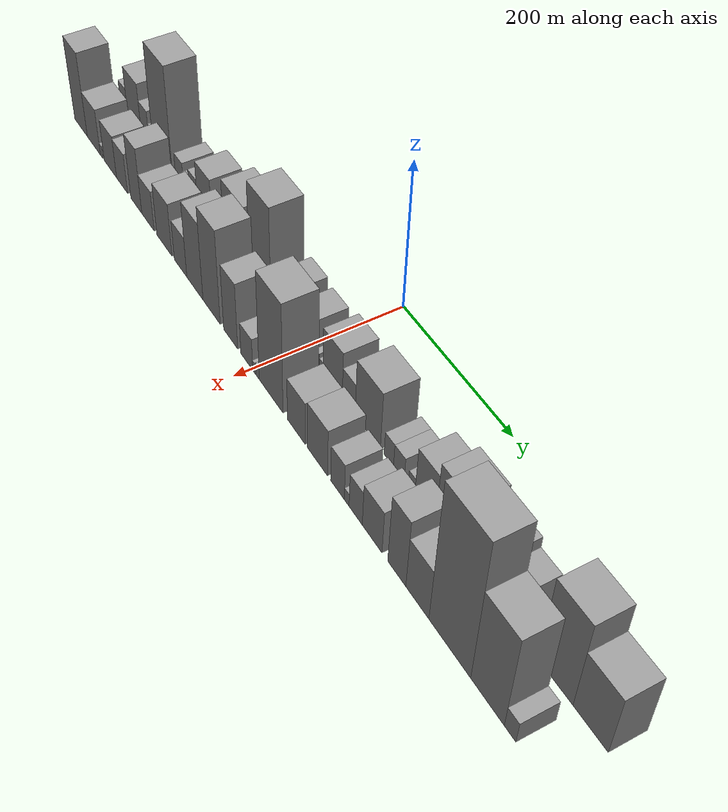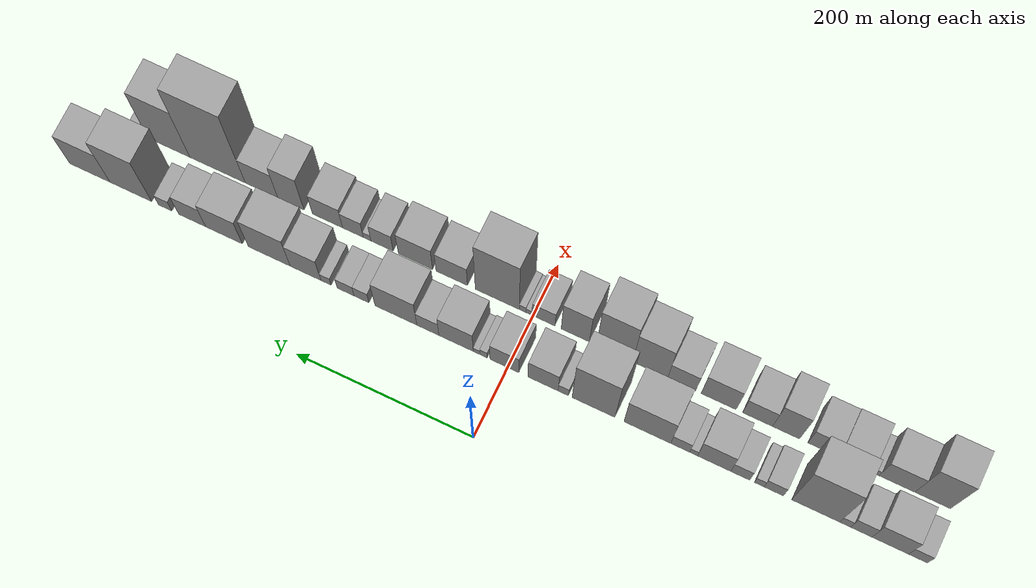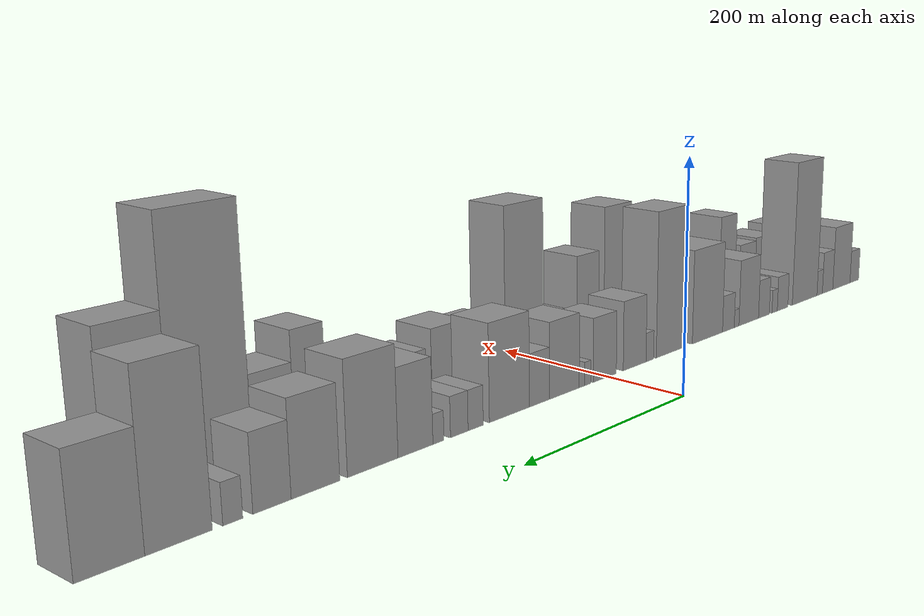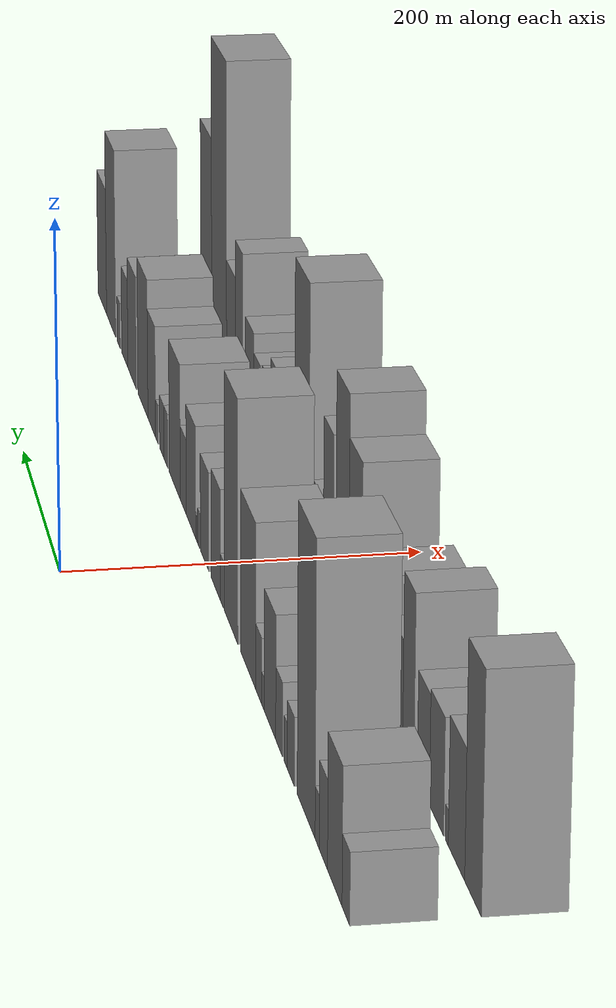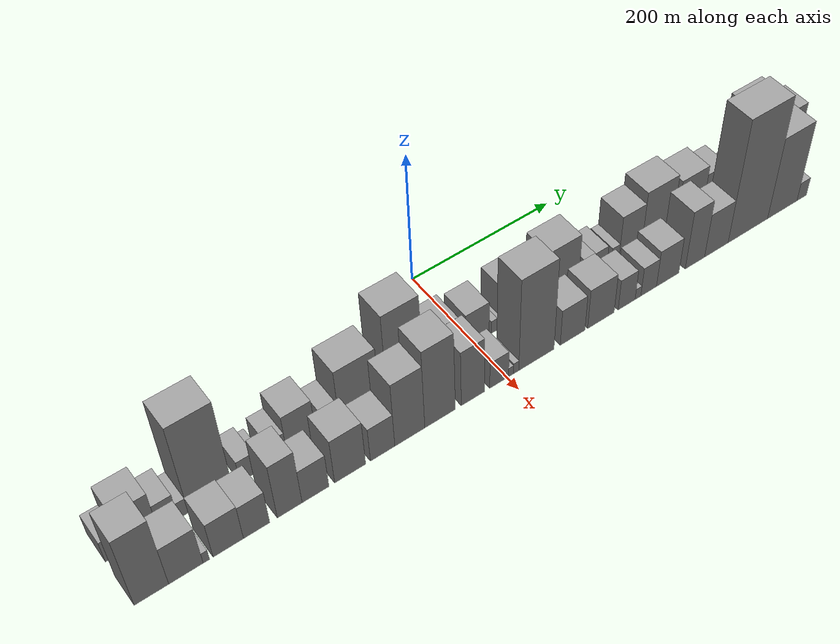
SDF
<sdf version="1.6">
 <world name="default">
  <scene>
   <sky><clouds><speed>12</speed></clouds></sky>
   <ambient>0.4 0.4 0.4 1</ambient>
   <background>0.7 0.7 0.7 1</background>
   <shadows>1</shadows>
  </scene>
  <gravity>0 0 -9.8066</gravity>
  <magnetic_field>6e-06 2.3e-05 -4.2e-05</magnetic_field>
  <physics default="0" name="default_physics" type="ode">
   <ode>
    <solver>
     <type>quick</type>
     <iters>10</iters>
     <sor>1.0</sor>
     <use_dynamic_moi_rescaling>0</use_dynamic_moi_rescaling>
    </solver>
    <constraints>
     <cfm>0</cfm>
     <erp>0.2</erp>
     <contact_max_correcting_vel>100</contact_max_correcting_vel>
     <contact_surface_layer>0.001</contact_surface_layer>
    </constraints>
   </ode>
   <max_step_size>0.004</max_step_size>
   <real_time_factor>1</real_time_factor>
   <real_time_update_rate>250</real_time_update_rate>
  </physics>
  <light name="sun" type="directional">
   <pose>0 0 10 0 0 0</pose>
   <diffuse>0.8 0.8 0.8 1</diffuse>
   <specular>0.2 0.2 0.2 1</specular>
   <attenuation>
    <range>1000</range>
    <constant>0.9</constant>
    <linear>0.01</linear>
    <quadratic>0.001</quadratic>
   </attenuation>
   <direction>-0.5 0.1 -0.9</direction>
  </light>
  <model name="building_1">
   <static>1</static>
   <pose>100.0000 -449.8626 0 0.000000 0.000000 0.000000</pose>
   <link name="link">
    <pose>0 0 18.00 0 0 0</pose>
    <collision name="collision"><geometry><box><size>40.0000 20.2748 36.0000</size></box></geometry></collision>
    <visual name="visual">
     <cast_shadows>0</cast_shadows>
     <geometry><box><size>40.0000 20.2748 36.0000</size></box></geometry>
     <material>
      <script>
       <uri>model://grey_wall/materials/scripts</uri>
       <uri>model://grey_wall/materials/textures</uri>
       <name>vrc/grey_wall</name>
      </script>
     </material>
    </visual>
   </link>
  </model>
  <model name="building_2">
   <static>1</static>
   <pose>100.0000 -420.0380 0 0.000000 0.000000 0.000000</pose>
   <link name="link">
    <pose>0 0 34.50 0 0 0</pose>
    <collision name="collision"><geometry><box><size>40.0000 39.3744 69.0000</size></box></geometry></collision>
    <visual name="visual">
     <cast_shadows>0</cast_shadows>
     <geometry><box><size>40.0000 39.3744 69.0000</size></box></geometry>
     <material>
      <script>
       <uri>model://grey_wall/materials/scripts</uri>
       <uri>model://grey_wall/materials/textures</uri>
       <name>vrc/grey_wall</name>
      </script>
     </material>
    </visual>
   </link>
  </model>
  <model name="building_3">
   <static>1</static>
   <pose>100.0000 -388.8218 0 0.000000 0.000000 0.000000</pose>
   <link name="link">
    <pose>0 0 22.50 0 0 0</pose>
    <collision name="collision"><geometry><box><size>40.0000 23.0582 45.0000</size></box></geometry></collision>
    <visual name="visual">
     <cast_shadows>0</cast_shadows>
     <geometry><box><size>40.0000 23.0582 45.0000</size></box></geometry>
     <material>
      <script>
       <uri>model://grey_wall/materials/scripts</uri>
       <uri>model://grey_wall/materials/textures</uri>
       <name>vrc/grey_wall</name>
      </script>
     </material>
    </visual>
   </link>
  </model>
  <model name="building_4">
   <static>1</static>
   <pose>100.0000 -371.4360 0 0.000000 0.000000 0.000000</pose>
   <link name="link">
    <pose>0 0 13.50 0 0 0</pose>
    <collision name="collision"><geometry><box><size>40.0000 11.7134 27.0000</size></box></geometry></collision>
    <visual name="visual">
     <cast_shadows>0</cast_shadows>
     <geometry><box><size>40.0000 11.7134 27.0000</size></box></geometry>
     <material>
      <script>
       <uri>model://grey_wall/materials/scripts</uri>
       <uri>model://grey_wall/materials/textures</uri>
       <name>vrc/grey_wall</name>
      </script>
     </material>
    </visual>
   </link>
  </model>
  <model name="building_5">
   <static>1</static>
   <pose>100.0000 -339.5729 0 0.000000 0.000000 0.000000</pose>
   <link name="link">
    <pose>0 0 75.00 0 0 0</pose>
    <collision name="collision"><geometry><box><size>40.0000 52.0127 150.0000</size></box></geometry></collision>
    <visual name="visual">
     <cast_shadows>0</cast_shadows>
     <geometry><box><size>40.0000 52.0127 150.0000</size></box></geometry>
     <material>
      <script>
       <uri>model://grey_wall/materials/scripts</uri>
       <uri>model://grey_wall/materials/textures</uri>
       <name>vrc/grey_wall</name>
      </script>
     </material>
    </visual>
   </link>
  </model>
  <model name="building_6">
   <static>1</static>
   <pose>100.0000 -293.9853 0 0.000000 0.000000 0.000000</pose>
   <link name="link">
    <pose>0 0 18.00 0 0 0</pose>
    <collision name="collision"><geometry><box><size>40.0000 21.1625 36.0000</size></box></geometry></collision>
    <visual name="visual">
     <cast_shadows>0</cast_shadows>
     <geometry><box><size>40.0000 21.1625 36.0000</size></box></geometry>
     <material>
      <script>
       <uri>model://grey_wall/materials/scripts</uri>
       <uri>model://grey_wall/materials/textures</uri>
       <name>vrc/grey_wall</name>
      </script>
     </material>
    </visual>
   </link>
  </model>
  <model name="building_7">
   <static>1</static>
   <pose>100.0000 -278.1422 0 0.000000 0.000000 0.000000</pose>
   <link name="link">
    <pose>0 0 12.00 0 0 0</pose>
    <collision name="collision"><geometry><box><size>40.0000 10.5238 24.0000</size></box></geometry></collision>
    <visual name="visual">
     <cast_shadows>0</cast_shadows>
     <geometry><box><size>40.0000 10.5238 24.0000</size></box></geometry>
     <material>
      <script>
       <uri>model://grey_wall/materials/scripts</uri>
       <uri>model://grey_wall/materials/textures</uri>
       <name>vrc/grey_wall</name>
      </script>
     </material>
    </visual>
   </link>
  </model>
  <model name="building_8">
   <static>1</static>
   <pose>100.0000 -257.4238 0 0.000000 0.000000 0.000000</pose>
   <link name="link">
    <pose>0 0 19.50 0 0 0</pose>
    <collision name="collision"><geometry><box><size>40.0000 20.9129 39.0000</size></box></geometry></collision>
    <visual name="visual">
     <cast_shadows>0</cast_shadows>
     <geometry><box><size>40.0000 20.9129 39.0000</size></box></geometry>
     <material>
      <script>
       <uri>model://grey_wall/materials/scripts</uri>
       <uri>model://grey_wall/materials/textures</uri>
       <name>vrc/grey_wall</name>
      </script>
     </material>
    </visual>
   </link>
  </model>
  <model name="building_9">
   <static>1</static>
   <pose>100.0000 -228.7680 0 0.000000 0.000000 0.000000</pose>
   <link name="link">
    <pose>0 0 33.00 0 0 0</pose>
    <collision name="collision"><geometry><box><size>40.0000 36.3987 66.0000</size></box></geometry></collision>
    <visual name="visual">
     <cast_shadows>0</cast_shadows>
     <geometry><box><size>40.0000 36.3987 66.0000</size></box></geometry>
     <material>
      <script>
       <uri>model://grey_wall/materials/scripts</uri>
       <uri>model://grey_wall/materials/textures</uri>
       <name>vrc/grey_wall</name>
      </script>
     </material>
    </visual>
   </link>
  </model>
  <model name="building_10">
   <static>1</static>
   <pose>100.0000 -206.2776 0 0.000000 0.000000 0.000000</pose>
   <link name="link">
    <pose>0 0 9.00 0 0 0</pose>
    <collision name="collision"><geometry><box><size>40.0000 8.5822 18.0000</size></box></geometry></collision>
    <visual name="visual">
     <cast_shadows>0</cast_shadows>
     <geometry><box><size>40.0000 8.5822 18.0000</size></box></geometry>
     <material>
      <script>
       <uri>model://grey_wall/materials/scripts</uri>
       <uri>model://grey_wall/materials/textures</uri>
       <name>vrc/grey_wall</name>
      </script>
     </material>
    </visual>
   </link>
  </model>
  <model name="building_11">
   <static>1</static>
   <pose>100.0000 -191.5250 0 0.000000 0.000000 0.000000</pose>
   <link name="link">
    <pose>0 0 18.00 0 0 0</pose>
    <collision name="collision"><geometry><box><size>40.0000 20.9230 36.0000</size></box></geometry></collision>
    <visual name="visual">
     <cast_shadows>0</cast_shadows>
     <geometry><box><size>40.0000 20.9230 36.0000</size></box></geometry>
     <material>
      <script>
       <uri>model://grey_wall/materials/scripts</uri>
       <uri>model://grey_wall/materials/textures</uri>
       <name>vrc/grey_wall</name>
      </script>
     </material>
    </visual>
   </link>
  </model>
  <model name="building_12">
   <static>1</static>
   <pose>100.0000 -155.1865 0 0.000000 0.000000 0.000000</pose>
   <link name="link">
    <pose>0 0 45.00 0 0 0</pose>
    <collision name="collision"><geometry><box><size>40.0000 51.7539 90.0000</size></box></geometry></collision>
    <visual name="visual">
     <cast_shadows>0</cast_shadows>
     <geometry><box><size>40.0000 51.7539 90.0000</size></box></geometry>
     <material>
      <script>
       <uri>model://grey_wall/materials/scripts</uri>
       <uri>model://grey_wall/materials/textures</uri>
       <name>vrc/grey_wall</name>
      </script>
     </material>
    </visual>
   </link>
  </model>
  <model name="building_13">
   <static>1</static>
   <pose>100.0000 -95.4096 0 0.000000 0.000000 0.000000</pose>
   <link name="link">
    <pose>0 0 67.50 0 0 0</pose>
    <collision name="collision"><geometry><box><size>40.0000 47.8001 135.0000</size></box></geometry></collision>
    <visual name="visual">
     <cast_shadows>0</cast_shadows>
     <geometry><box><size>40.0000 47.8001 135.0000</size></box></geometry>
     <material>
      <script>
       <uri>model://grey_wall/materials/scripts</uri>
       <uri>model://grey_wall/materials/textures</uri>
       <name>vrc/grey_wall</name>
      </script>
     </material>
    </visual>
   </link>
  </model>
  <model name="building_14">
   <static>1</static>
   <pose>100.0000 -61.6691 0 0.000000 0.000000 0.000000</pose>
   <link name="link">
    <pose>0 0 13.50 0 0 0</pose>
    <collision name="collision"><geometry><box><size>40.0000 11.6809 27.0000</size></box></geometry></collision>
    <visual name="visual">
     <cast_shadows>0</cast_shadows>
     <geometry><box><size>40.0000 11.6809 27.0000</size></box></geometry>
     <material>
      <script>
       <uri>model://grey_wall/materials/scripts</uri>
       <uri>model://grey_wall/materials/textures</uri>
       <name>vrc/grey_wall</name>
      </script>
     </material>
    </visual>
   </link>
  </model>
  <model name="building_15">
   <static>1</static>
   <pose>100.0000 -38.9143 0 0.000000 0.000000 0.000000</pose>
   <link name="link">
    <pose>0 0 31.50 0 0 0</pose>
    <collision name="collision"><geometry><box><size>40.0000 33.8286 63.0000</size></box></geometry></collision>
    <visual name="visual">
     <cast_shadows>0</cast_shadows>
     <geometry><box><size>40.0000 33.8286 63.0000</size></box></geometry>
     <material>
      <script>
       <uri>model://grey_wall/materials/scripts</uri>
       <uri>model://grey_wall/materials/textures</uri>
       <name>vrc/grey_wall</name>
      </script>
     </material>
    </visual>
   </link>
  </model>
  <model name="building_16">
   <static>1</static>
   <pose>100.0000 4.2583 0 0.000000 0.000000 0.000000</pose>
   <link name="link">
    <pose>0 0 28.50 0 0 0</pose>
    <collision name="collision"><geometry><box><size>40.0000 32.5166 57.0000</size></box></geometry></collision>
    <visual name="visual">
     <cast_shadows>0</cast_shadows>
     <geometry><box><size>40.0000 32.5166 57.0000</size></box></geometry>
     <material>
      <script>
       <uri>model://grey_wall/materials/scripts</uri>
       <uri>model://grey_wall/materials/textures</uri>
       <name>vrc/grey_wall</name>
      </script>
     </material>
    </visual>
   </link>
  </model>
  <model name="building_17">
   <static>1</static>
   <pose>100.0000 27.7395 0 0.000000 0.000000 0.000000</pose>
   <link name="link">
    <pose>0 0 10.50 0 0 0</pose>
    <collision name="collision"><geometry><box><size>40.0000 8.4458 21.0000</size></box></geometry></collision>
    <visual name="visual">
     <cast_shadows>0</cast_shadows>
     <geometry><box><size>40.0000 8.4458 21.0000</size></box></geometry>
     <material>
      <script>
       <uri>model://grey_wall/materials/scripts</uri>
       <uri>model://grey_wall/materials/textures</uri>
       <name>vrc/grey_wall</name>
      </script>
     </material>
    </visual>
   </link>
  </model>
  <model name="building_18">
   <static>1</static>
   <pose>100.0000 35.7000 0 0.000000 0.000000 0.000000</pose>
   <link name="link">
    <pose>0 0 7.50 0 0 0</pose>
    <collision name="collision"><geometry><box><size>40.0000 7.4752 15.0000</size></box></geometry></collision>
    <visual name="visual">
     <cast_shadows>0</cast_shadows>
     <geometry><box><size>40.0000 7.4752 15.0000</size></box></geometry>
     <material>
      <script>
       <uri>model://grey_wall/materials/scripts</uri>
       <uri>model://grey_wall/materials/textures</uri>
       <name>vrc/grey_wall</name>
      </script>
     </material>
    </visual>
   </link>
  </model>
  <model name="building_19">
   <static>1</static>
   <pose>100.0000 58.8195 0 0.000000 0.000000 0.000000</pose>
   <link name="link">
    <pose>0 0 33.00 0 0 0</pose>
    <collision name="collision"><geometry><box><size>40.0000 38.7638 66.0000</size></box></geometry></collision>
    <visual name="visual">
     <cast_shadows>0</cast_shadows>
     <geometry><box><size>40.0000 38.7638 66.0000</size></box></geometry>
     <material>
      <script>
       <uri>model://grey_wall/materials/scripts</uri>
       <uri>model://grey_wall/materials/textures</uri>
       <name>vrc/grey_wall</name>
      </script>
     </material>
    </visual>
   </link>
  </model>
  <model name="building_20">
   <static>1</static>
   <pose>100.0000 90.7243 0 0.000000 0.000000 0.000000</pose>
   <link name="link">
    <pose>0 0 22.50 0 0 0</pose>
    <collision name="collision"><geometry><box><size>40.0000 25.0458 45.0000</size></box></geometry></collision>
    <visual name="visual">
     <cast_shadows>0</cast_shadows>
     <geometry><box><size>40.0000 25.0458 45.0000</size></box></geometry>
     <material>
      <script>
       <uri>model://grey_wall/materials/scripts</uri>
       <uri>model://grey_wall/materials/textures</uri>
       <name>vrc/grey_wall</name>
      </script>
     </material>
    </visual>
   </link>
  </model>
  <model name="building_21">
   <static>1</static>
   <pose>100.0000 127.0861 0 0.000000 0.000000 0.000000</pose>
   <link name="link">
    <pose>0 0 40.50 0 0 0</pose>
    <collision name="collision"><geometry><box><size>40.0000 47.6779 81.0000</size></box></geometry></collision>
    <visual name="visual">
     <cast_shadows>0</cast_shadows>
     <geometry><box><size>40.0000 47.6779 81.0000</size></box></geometry>
     <material>
      <script>
       <uri>model://grey_wall/materials/scripts</uri>
       <uri>model://grey_wall/materials/textures</uri>
       <name>vrc/grey_wall</name>
      </script>
     </material>
    </visual>
   </link>
  </model>
  <model name="building_22">
   <static>1</static>
   <pose>100.0000 166.4520 0 0.000000 0.000000 0.000000</pose>
   <link name="link">
    <pose>0 0 16.50 0 0 0</pose>
    <collision name="collision"><geometry><box><size>40.0000 17.0539 33.0000</size></box></geometry></collision>
    <visual name="visual">
     <cast_shadows>0</cast_shadows>
     <geometry><box><size>40.0000 17.0539 33.0000</size></box></geometry>
     <material>
      <script>
       <uri>model://grey_wall/materials/scripts</uri>
       <uri>model://grey_wall/materials/textures</uri>
       <name>vrc/grey_wall</name>
      </script>
     </material>
    </visual>
   </link>
  </model>
  <model name="building_23">
   <static>1</static>
   <pose>100.0000 184.6069 0 0.000000 0.000000 0.000000</pose>
   <link name="link">
    <pose>0 0 16.50 0 0 0</pose>
    <collision name="collision"><geometry><box><size>40.0000 19.2559 33.0000</size></box></geometry></collision>
    <visual name="visual">
     <cast_shadows>0</cast_shadows>
     <geometry><box><size>40.0000 19.2559 33.0000</size></box></geometry>
     <material>
      <script>
       <uri>model://grey_wall/materials/scripts</uri>
       <uri>model://grey_wall/materials/textures</uri>
       <name>vrc/grey_wall</name>
      </script>
     </material>
    </visual>
   </link>
  </model>
  <model name="building_24">
   <static>1</static>
   <pose>100.0000 207.0537 0 0.000000 0.000000 0.000000</pose>
   <link name="link">
    <pose>0 0 12.00 0 0 0</pose>
    <collision name="collision"><geometry><box><size>40.0000 11.6377 24.0000</size></box></geometry></collision>
    <visual name="visual">
     <cast_shadows>0</cast_shadows>
     <geometry><box><size>40.0000 11.6377 24.0000</size></box></geometry>
     <material>
      <script>
       <uri>model://grey_wall/materials/scripts</uri>
       <uri>model://grey_wall/materials/textures</uri>
       <name>vrc/grey_wall</name>
      </script>
     </material>
    </visual>
   </link>
  </model>
  <model name="building_25">
   <static>1</static>
   <pose>100.0000 230.6576 0 0.000000 0.000000 0.000000</pose>
   <link name="link">
    <pose>0 0 34.50 0 0 0</pose>
    <collision name="collision"><geometry><box><size>40.0000 35.5702 69.0000</size></box></geometry></collision>
    <visual name="visual">
     <cast_shadows>0</cast_shadows>
     <geometry><box><size>40.0000 35.5702 69.0000</size></box></geometry>
     <material>
      <script>
       <uri>model://grey_wall/materials/scripts</uri>
       <uri>model://grey_wall/materials/textures</uri>
       <name>vrc/grey_wall</name>
      </script>
     </material>
    </visual>
   </link>
  </model>
  <model name="building_26">
   <static>1</static>
   <pose>100.0000 272.6482 0 0.000000 0.000000 0.000000</pose>
   <link name="link">
    <pose>0 0 43.50 0 0 0</pose>
    <collision name="collision"><geometry><box><size>40.0000 48.4110 87.0000</size></box></geometry></collision>
    <visual name="visual">
     <cast_shadows>0</cast_shadows>
     <geometry><box><size>40.0000 48.4110 87.0000</size></box></geometry>
     <material>
      <script>
       <uri>model://grey_wall/materials/scripts</uri>
       <uri>model://grey_wall/materials/textures</uri>
       <name>vrc/grey_wall</name>
      </script>
     </material>
    </visual>
   </link>
  </model>
  <model name="building_27">
   <static>1</static>
   <pose>100.0000 325.1792 0 0.000000 0.000000 0.000000</pose>
   <link name="link">
    <pose>0 0 36.00 0 0 0</pose>
    <collision name="collision"><geometry><box><size>40.0000 42.6510 72.0000</size></box></geometry></collision>
    <visual name="visual">
     <cast_shadows>0</cast_shadows>
     <geometry><box><size>40.0000 42.6510 72.0000</size></box></geometry>
     <material>
      <script>
       <uri>model://grey_wall/materials/scripts</uri>
       <uri>model://grey_wall/materials/textures</uri>
       <name>vrc/grey_wall</name>
      </script>
     </material>
    </visual>
   </link>
  </model>
  <model name="building_28">
   <static>1</static>
   <pose>100.0000 362.3307 0 0.000000 0.000000 0.000000</pose>
   <link name="link">
    <pose>0 0 28.50 0 0 0</pose>
    <collision name="collision"><geometry><box><size>40.0000 31.6519 57.0000</size></box></geometry></collision>
    <visual name="visual">
     <cast_shadows>0</cast_shadows>
     <geometry><box><size>40.0000 31.6519 57.0000</size></box></geometry>
     <material>
      <script>
       <uri>model://grey_wall/materials/scripts</uri>
       <uri>model://grey_wall/materials/textures</uri>
       <name>vrc/grey_wall</name>
      </script>
     </material>
    </visual>
   </link>
  </model>
  <model name="building_29">
   <static>1</static>
   <pose>100.0000 393.9861 0 0.000000 0.000000 0.000000</pose>
   <link name="link">
    <pose>0 0 15.00 0 0 0</pose>
    <collision name="collision"><geometry><box><size>40.0000 15.6589 30.0000</size></box></geometry></collision>
    <visual name="visual">
     <cast_shadows>0</cast_shadows>
     <geometry><box><size>40.0000 15.6589 30.0000</size></box></geometry>
     <material>
      <script>
       <uri>model://grey_wall/materials/scripts</uri>
       <uri>model://grey_wall/materials/textures</uri>
       <name>vrc/grey_wall</name>
      </script>
     </material>
    </visual>
   </link>
  </model>
  <model name="building_30">
   <static>1</static>
   <pose>100.0000 434.3695 0 0.000000 0.000000 0.000000</pose>
   <link name="link">
    <pose>0 0 61.50 0 0 0</pose>
    <collision name="collision"><geometry><box><size>40.0000 49.1080 123.0000</size></box></geometry></collision>
    <visual name="visual">
     <cast_shadows>0</cast_shadows>
     <geometry><box><size>40.0000 49.1080 123.0000</size></box></geometry>
     <material>
      <script>
       <uri>model://grey_wall/materials/scripts</uri>
       <uri>model://grey_wall/materials/textures</uri>
       <name>vrc/grey_wall</name>
      </script>
     </material>
    </visual>
   </link>
  </model>
  <model name="building_31">
   <static>1</static>
   <pose>100.0000 482.7435 0 0.000000 0.000000 0.000000</pose>
   <link name="link">
    <pose>0 0 42.00 0 0 0</pose>
    <collision name="collision"><geometry><box><size>40.0000 47.6400 84.0000</size></box></geometry></collision>
    <visual name="visual">
     <cast_shadows>0</cast_shadows>
     <geometry><box><size>40.0000 47.6400 84.0000</size></box></geometry>
     <material>
      <script>
       <uri>model://grey_wall/materials/scripts</uri>
       <uri>model://grey_wall/materials/textures</uri>
       <name>vrc/grey_wall</name>
      </script>
     </material>
    </visual>
   </link>
  </model>
  <model name="building_32">
   <static>1</static>
   <pose>160.0000 -440.8361 0 0.000000 0.000000 0.000000</pose>
   <link name="link">
    <pose>0 0 60.00 0 0 0</pose>
    <collision name="collision"><geometry><box><size>40.0000 38.3278 120.0000</size></box></geometry></collision>
    <visual name="visual">
     <cast_shadows>0</cast_shadows>
     <geometry><box><size>40.0000 38.3278 120.0000</size></box></geometry>
     <material>
      <script>
       <uri>model://grey_wall/materials/scripts</uri>
       <uri>model://grey_wall/materials/textures</uri>
       <name>vrc/grey_wall</name>
      </script>
     </material>
    </visual>
   </link>
  </model>
  <model name="building_33">
   <static>1</static>
   <pose>160.0000 -402.2378 0 0.000000 0.000000 0.000000</pose>
   <link name="link">
    <pose>0 0 33.00 0 0 0</pose>
    <collision name="collision"><geometry><box><size>40.0000 38.8689 66.0000</size></box></geometry></collision>
    <visual name="visual">
     <cast_shadows>0</cast_shadows>
     <geometry><box><size>40.0000 38.8689 66.0000</size></box></geometry>
     <material>
      <script>
       <uri>model://grey_wall/materials/scripts</uri>
       <uri>model://grey_wall/materials/textures</uri>
       <name>vrc/grey_wall</name>
      </script>
     </material>
    </visual>
   </link>
  </model>
  <model name="building_34">
   <static>1</static>
   <pose>160.0000 -379.1313 0 0.000000 0.000000 0.000000</pose>
   <link name="link">
    <pose>0 0 9.00 0 0 0</pose>
    <collision name="collision"><geometry><box><size>40.0000 7.3441 18.0000</size></box></geometry></collision>
    <visual name="visual">
     <cast_shadows>0</cast_shadows>
     <geometry><box><size>40.0000 7.3441 18.0000</size></box></geometry>
     <material>
      <script>
       <uri>model://grey_wall/materials/scripts</uri>
       <uri>model://grey_wall/materials/textures</uri>
       <name>vrc/grey_wall</name>
      </script>
     </material>
    </visual>
   </link>
  </model>
  <model name="building_35">
   <static>1</static>
   <pose>160.0000 -353.8364 0 0.000000 0.000000 0.000000</pose>
   <link name="link">
    <pose>0 0 30.00 0 0 0</pose>
    <collision name="collision"><geometry><box><size>40.0000 35.2457 60.0000</size></box></geometry></collision>
    <visual name="visual">
     <cast_shadows>0</cast_shadows>
     <geometry><box><size>40.0000 35.2457 60.0000</size></box></geometry>
     <material>
      <script>
       <uri>model://grey_wall/materials/scripts</uri>
       <uri>model://grey_wall/materials/textures</uri>
       <name>vrc/grey_wall</name>
      </script>
     </material>
    </visual>
   </link>
  </model>
  <model name="building_36">
   <static>1</static>
   <pose>160.0000 -320.7189 0 0.000000 0.000000 0.000000</pose>
   <link name="link">
    <pose>0 0 28.50 0 0 0</pose>
    <collision name="collision"><geometry><box><size>40.0000 30.9892 57.0000</size></box></geometry></collision>
    <visual name="visual">
     <cast_shadows>0</cast_shadows>
     <geometry><box><size>40.0000 30.9892 57.0000</size></box></geometry>
     <material>
      <script>
       <uri>model://grey_wall/materials/scripts</uri>
       <uri>model://grey_wall/materials/textures</uri>
       <name>vrc/grey_wall</name>
      </script>
     </material>
    </visual>
   </link>
  </model>
  <model name="building_37">
   <static>1</static>
   <pose>160.0000 -281.3002 0 0.000000 0.000000 0.000000</pose>
   <link name="link">
    <pose>0 0 46.50 0 0 0</pose>
    <collision name="collision"><geometry><box><size>40.0000 29.8483 93.0000</size></box></geometry></collision>
    <visual name="visual">
     <cast_shadows>0</cast_shadows>
     <geometry><box><size>40.0000 29.8483 93.0000</size></box></geometry>
     <material>
      <script>
       <uri>model://grey_wall/materials/scripts</uri>
       <uri>model://grey_wall/materials/textures</uri>
       <name>vrc/grey_wall</name>
      </script>
     </material>
    </visual>
   </link>
  </model>
  <model name="building_38">
   <static>1</static>
   <pose>160.0000 -249.9176 0 0.000000 0.000000 0.000000</pose>
   <link name="link">
    <pose>0 0 28.50 0 0 0</pose>
    <collision name="collision"><geometry><box><size>40.0000 32.9169 57.0000</size></box></geometry></collision>
    <visual name="visual">
     <cast_shadows>0</cast_shadows>
     <geometry><box><size>40.0000 32.9169 57.0000</size></box></geometry>
     <material>
      <script>
       <uri>model://grey_wall/materials/scripts</uri>
       <uri>model://grey_wall/materials/textures</uri>
       <name>vrc/grey_wall</name>
      </script>
     </material>
    </visual>
   </link>
  </model>
  <model name="building_39">
   <static>1</static>
   <pose>160.0000 -207.0319 0 0.000000 0.000000 0.000000</pose>
   <link name="link">
    <pose>0 0 37.50 0 0 0</pose>
    <collision name="collision"><geometry><box><size>40.0000 38.8544 75.0000</size></box></geometry></collision>
    <visual name="visual">
     <cast_shadows>0</cast_shadows>
     <geometry><box><size>40.0000 38.8544 75.0000</size></box></geometry>
     <material>
      <script>
       <uri>model://grey_wall/materials/scripts</uri>
       <uri>model://grey_wall/materials/textures</uri>
       <name>vrc/grey_wall</name>
      </script>
     </material>
    </visual>
   </link>
  </model>
  <model name="building_40">
   <static>1</static>
   <pose>160.0000 -166.0215 0 0.000000 0.000000 0.000000</pose>
   <link name="link">
    <pose>0 0 28.50 0 0 0</pose>
    <collision name="collision"><geometry><box><size>40.0000 31.1665 57.0000</size></box></geometry></collision>
    <visual name="visual">
     <cast_shadows>0</cast_shadows>
     <geometry><box><size>40.0000 31.1665 57.0000</size></box></geometry>
     <material>
      <script>
       <uri>model://grey_wall/materials/scripts</uri>
       <uri>model://grey_wall/materials/textures</uri>
       <name>vrc/grey_wall</name>
      </script>
     </material>
    </visual>
   </link>
  </model>
  <model name="building_41">
   <static>1</static>
   <pose>160.0000 -130.9141 0 0.000000 0.000000 0.000000</pose>
   <link name="link">
    <pose>0 0 54.00 0 0 0</pose>
    <collision name="collision"><geometry><box><size>40.0000 39.0482 108.0000</size></box></geometry></collision>
    <visual name="visual">
     <cast_shadows>0</cast_shadows>
     <geometry><box><size>40.0000 39.0482 108.0000</size></box></geometry>
     <material>
      <script>
       <uri>model://grey_wall/materials/scripts</uri>
       <uri>model://grey_wall/materials/textures</uri>
       <name>vrc/grey_wall</name>
      </script>
     </material>
    </visual>
   </link>
  </model>
  <model name="building_42">
   <static>1</static>
   <pose>160.0000 -91.1253 0 0.000000 0.000000 0.000000</pose>
   <link name="link">
    <pose>0 0 66.00 0 0 0</pose>
    <collision name="collision"><geometry><box><size>40.0000 40.5294 132.0000</size></box></geometry></collision>
    <visual name="visual">
     <cast_shadows>0</cast_shadows>
     <geometry><box><size>40.0000 40.5294 132.0000</size></box></geometry>
     <material>
      <script>
       <uri>model://grey_wall/materials/scripts</uri>
       <uri>model://grey_wall/materials/textures</uri>
       <name>vrc/grey_wall</name>
      </script>
     </material>
    </visual>
   </link>
  </model>
  <model name="building_43">
   <static>1</static>
   <pose>160.0000 -47.0292 0 0.000000 0.000000 0.000000</pose>
   <link name="link">
    <pose>0 0 46.50 0 0 0</pose>
    <collision name="collision"><geometry><box><size>40.0000 31.6630 93.0000</size></box></geometry></collision>
    <visual name="visual">
     <cast_shadows>0</cast_shadows>
     <geometry><box><size>40.0000 31.6630 93.0000</size></box></geometry>
     <material>
      <script>
       <uri>model://grey_wall/materials/scripts</uri>
       <uri>model://grey_wall/materials/textures</uri>
       <name>vrc/grey_wall</name>
      </script>
     </material>
    </visual>
   </link>
  </model>
  <model name="building_44">
   <static>1</static>
   <pose>160.0000 -11.1660 0 0.000000 0.000000 0.000000</pose>
   <link name="link">
    <pose>0 0 22.50 0 0 0</pose>
    <collision name="collision"><geometry><box><size>40.0000 26.0634 45.0000</size></box></geometry></collision>
    <visual name="visual">
     <cast_shadows>0</cast_shadows>
     <geometry><box><size>40.0000 26.0634 45.0000</size></box></geometry>
     <material>
      <script>
       <uri>model://grey_wall/materials/scripts</uri>
       <uri>model://grey_wall/materials/textures</uri>
       <name>vrc/grey_wall</name>
      </script>
     </material>
    </visual>
   </link>
  </model>
  <model name="building_45">
   <static>1</static>
   <pose>160.0000 5.2234 0 0.000000 0.000000 0.000000</pose>
   <link name="link">
    <pose>0 0 7.50 0 0 0</pose>
    <collision name="collision"><geometry><box><size>40.0000 6.7153 15.0000</size></box></geometry></collision>
    <visual name="visual">
     <cast_shadows>0</cast_shadows>
     <geometry><box><size>40.0000 6.7153 15.0000</size></box></geometry>
     <material>
      <script>
       <uri>model://grey_wall/materials/scripts</uri>
       <uri>model://grey_wall/materials/textures</uri>
       <name>vrc/grey_wall</name>
      </script>
     </material>
    </visual>
   </link>
  </model>
  <model name="building_46">
   <static>1</static>
   <pose>160.0000 12.3222 0 0.000000 0.000000 0.000000</pose>
   <link name="link">
    <pose>0 0 9.00 0 0 0</pose>
    <collision name="collision"><geometry><box><size>40.0000 7.4822 18.0000</size></box></geometry></collision>
    <visual name="visual">
     <cast_shadows>0</cast_shadows>
     <geometry><box><size>40.0000 7.4822 18.0000</size></box></geometry>
     <material>
      <script>
       <uri>model://grey_wall/materials/scripts</uri>
       <uri>model://grey_wall/materials/textures</uri>
       <name>vrc/grey_wall</name>
      </script>
     </material>
    </visual>
   </link>
  </model>
  <model name="building_47">
   <static>1</static>
   <pose>160.0000 41.0272 0 0.000000 0.000000 0.000000</pose>
   <link name="link">
    <pose>0 0 76.50 0 0 0</pose>
    <collision name="collision"><geometry><box><size>40.0000 49.9279 153.0000</size></box></geometry></collision>
    <visual name="visual">
     <cast_shadows>0</cast_shadows>
     <geometry><box><size>40.0000 49.9279 153.0000</size></box></geometry>
     <material>
      <script>
       <uri>model://grey_wall/materials/scripts</uri>
       <uri>model://grey_wall/materials/textures</uri>
       <name>vrc/grey_wall</name>
      </script>
     </material>
    </visual>
   </link>
  </model>
  <model name="building_48">
   <static>1</static>
   <pose>160.0000 92.8804 0 0.000000 0.000000 0.000000</pose>
   <link name="link">
    <pose>0 0 30.00 0 0 0</pose>
    <collision name="collision"><geometry><box><size>40.0000 35.7784 60.0000</size></box></geometry></collision>
    <visual name="visual">
     <cast_shadows>0</cast_shadows>
     <geometry><box><size>40.0000 35.7784 60.0000</size></box></geometry>
     <material>
      <script>
       <uri>model://grey_wall/materials/scripts</uri>
       <uri>model://grey_wall/materials/textures</uri>
       <name>vrc/grey_wall</name>
      </script>
     </material>
    </visual>
   </link>
  </model>
  <model name="building_49">
   <static>1</static>
   <pose>160.0000 134.3964 0 0.000000 0.000000 0.000000</pose>
   <link name="link">
    <pose>0 0 33.00 0 0 0</pose>
    <collision name="collision"><geometry><box><size>40.0000 39.2535 66.0000</size></box></geometry></collision>
    <visual name="visual">
     <cast_shadows>0</cast_shadows>
     <geometry><box><size>40.0000 39.2535 66.0000</size></box></geometry>
     <material>
      <script>
       <uri>model://grey_wall/materials/scripts</uri>
       <uri>model://grey_wall/materials/textures</uri>
       <name>vrc/grey_wall</name>
      </script>
     </material>
    </visual>
   </link>
  </model>
  <model name="building_50">
   <static>1</static>
   <pose>160.0000 172.7979 0 0.000000 0.000000 0.000000</pose>
   <link name="link">
    <pose>0 0 25.50 0 0 0</pose>
    <collision name="collision"><geometry><box><size>40.0000 25.5496 51.0000</size></box></geometry></collision>
    <visual name="visual">
     <cast_shadows>0</cast_shadows>
     <geometry><box><size>40.0000 25.5496 51.0000</size></box></geometry>
     <material>
      <script>
       <uri>model://grey_wall/materials/scripts</uri>
       <uri>model://grey_wall/materials/textures</uri>
       <name>vrc/grey_wall</name>
      </script>
     </material>
    </visual>
   </link>
  </model>
  <model name="building_51">
   <static>1</static>
   <pose>160.0000 189.9495 0 0.000000 0.000000 0.000000</pose>
   <link name="link">
    <pose>0 0 9.00 0 0 0</pose>
    <collision name="collision"><geometry><box><size>40.0000 8.7536 18.0000</size></box></geometry></collision>
    <visual name="visual">
     <cast_shadows>0</cast_shadows>
     <geometry><box><size>40.0000 8.7536 18.0000</size></box></geometry>
     <material>
      <script>
       <uri>model://grey_wall/materials/scripts</uri>
       <uri>model://grey_wall/materials/textures</uri>
       <name>vrc/grey_wall</name>
      </script>
     </material>
    </visual>
   </link>
  </model>
  <model name="building_52">
   <static>1</static>
   <pose>160.0000 206.3289 0 0.000000 0.000000 0.000000</pose>
   <link name="link">
    <pose>0 0 24.00 0 0 0</pose>
    <collision name="collision"><geometry><box><size>40.0000 24.0052 48.0000</size></box></geometry></collision>
    <visual name="visual">
     <cast_shadows>0</cast_shadows>
     <geometry><box><size>40.0000 24.0052 48.0000</size></box></geometry>
     <material>
      <script>
       <uri>model://grey_wall/materials/scripts</uri>
       <uri>model://grey_wall/materials/textures</uri>
       <name>vrc/grey_wall</name>
      </script>
     </material>
    </visual>
   </link>
  </model>
  <model name="building_53">
   <static>1</static>
   <pose>160.0000 235.7483 0 0.000000 0.000000 0.000000</pose>
   <link name="link">
    <pose>0 0 30.00 0 0 0</pose>
    <collision name="collision"><geometry><box><size>40.0000 34.8336 60.0000</size></box></geometry></collision>
    <visual name="visual">
     <cast_shadows>0</cast_shadows>
     <geometry><box><size>40.0000 34.8336 60.0000</size></box></geometry>
     <material>
      <script>
       <uri>model://grey_wall/materials/scripts</uri>
       <uri>model://grey_wall/materials/textures</uri>
       <name>vrc/grey_wall</name>
      </script>
     </material>
    </visual>
   </link>
  </model>
  <model name="building_54">
   <static>1</static>
   <pose>160.0000 278.4550 0 0.000000 0.000000 0.000000</pose>
   <link name="link">
    <pose>0 0 48.00 0 0 0</pose>
    <collision name="collision"><geometry><box><size>40.0000 30.5797 96.0000</size></box></geometry></collision>
    <visual name="visual">
     <cast_shadows>0</cast_shadows>
     <geometry><box><size>40.0000 30.5797 96.0000</size></box></geometry>
     <material>
      <script>
       <uri>model://grey_wall/materials/scripts</uri>
       <uri>model://grey_wall/materials/textures</uri>
       <name>vrc/grey_wall</name>
      </script>
     </material>
    </visual>
   </link>
  </model>
  <model name="building_55">
   <static>1</static>
   <pose>160.0000 312.6941 0 0.000000 0.000000 0.000000</pose>
   <link name="link">
    <pose>0 0 36.00 0 0 0</pose>
    <collision name="collision"><geometry><box><size>40.0000 37.8986 72.0000</size></box></geometry></collision>
    <visual name="visual">
     <cast_shadows>0</cast_shadows>
     <geometry><box><size>40.0000 37.8986 72.0000</size></box></geometry>
     <material>
      <script>
       <uri>model://grey_wall/materials/scripts</uri>
       <uri>model://grey_wall/materials/textures</uri>
       <name>vrc/grey_wall</name>
      </script>
     </material>
    </visual>
   </link>
  </model>
  <model name="building_56">
   <static>1</static>
   <pose>160.0000 364.2523 0 0.000000 0.000000 0.000000</pose>
   <link name="link">
    <pose>0 0 99.00 0 0 0</pose>
    <collision name="collision"><geometry><box><size>40.0000 65.2178 198.0000</size></box></geometry></collision>
    <visual name="visual">
     <cast_shadows>0</cast_shadows>
     <geometry><box><size>40.0000 65.2178 198.0000</size></box></geometry>
     <material>
      <script>
       <uri>model://grey_wall/materials/scripts</uri>
       <uri>model://grey_wall/materials/textures</uri>
       <name>vrc/grey_wall</name>
      </script>
     </material>
    </visual>
   </link>
  </model>
  <model name="building_57">
   <static>1</static>
   <pose>160.0000 421.6298 0 0.000000 0.000000 0.000000</pose>
   <link name="link">
    <pose>0 0 66.00 0 0 0</pose>
    <collision name="collision"><geometry><box><size>40.0000 49.5372 132.0000</size></box></geometry></collision>
    <visual name="visual">
     <cast_shadows>0</cast_shadows>
     <geometry><box><size>40.0000 49.5372 132.0000</size></box></geometry>
     <material>
      <script>
       <uri>model://grey_wall/materials/scripts</uri>
       <uri>model://grey_wall/materials/textures</uri>
       <name>vrc/grey_wall</name>
      </script>
     </material>
    </visual>
   </link>
  </model>
  <model name="building_58">
   <static>1</static>
   <pose>160.0000 454.6637 0 0.000000 0.000000 0.000000</pose>
   <link name="link">
    <pose>0 0 15.00 0 0 0</pose>
    <collision name="collision"><geometry><box><size>40.0000 16.5307 30.0000</size></box></geometry></collision>
    <visual name="visual">
     <cast_shadows>0</cast_shadows>
     <geometry><box><size>40.0000 16.5307 30.0000</size></box></geometry>
     <material>
      <script>
       <uri>model://grey_wall/materials/scripts</uri>
       <uri>model://grey_wall/materials/textures</uri>
       <name>vrc/grey_wall</name>
      </script>
     </material>
    </visual>
   </link>
  </model>
 </world>
</sdf>
